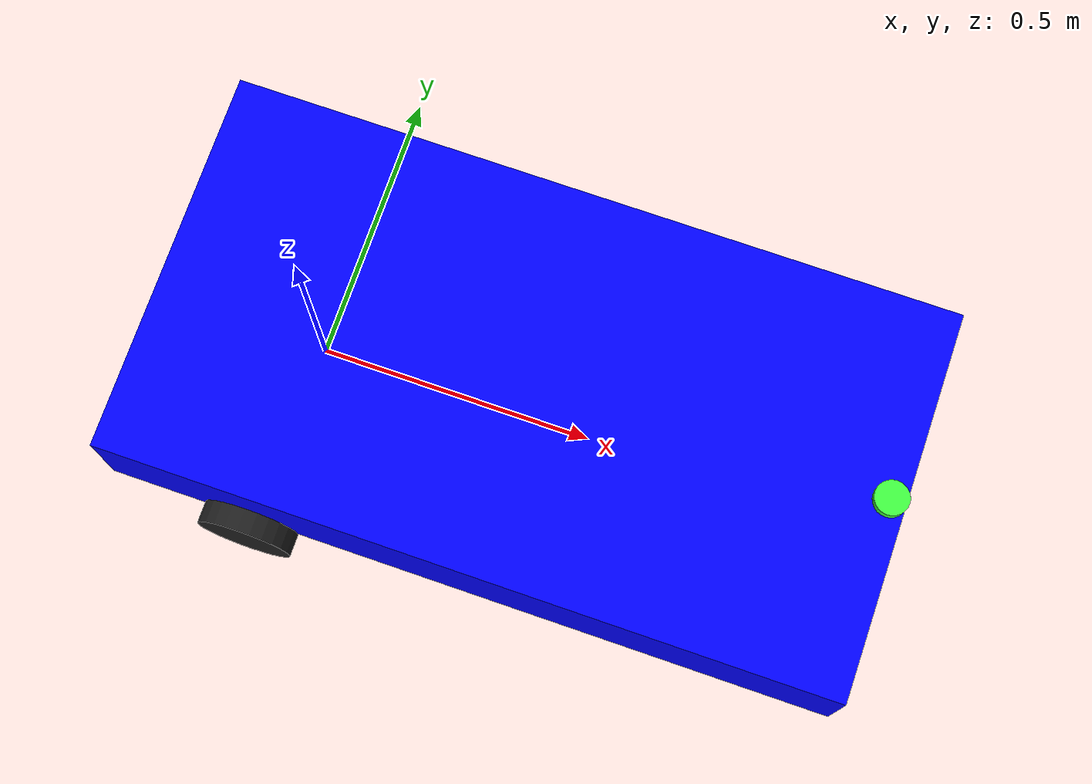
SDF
<sdf version='1.9'>
  <model name='jimbo_robot'>
    <link name='base_footprint'>
      <inertial>
        <pose>0.4125806451612903 0 0.1885483870967742 0 0 0</pose>
        <mass>3.1000000000000001</mass>
        <inertia>
          <ixx>0.01369596774193549</ixx>
          <ixy>0</ixy>
          <ixz>-0.0066266129032258314</ixz>
          <iyy>0.063696572580645205</iyy>
          <iyz>0</iyz>
          <izz>0.070008604838709743</izz>
        </inertia>
      </inertial>
      <collision name='base_footprint_fixed_joint_lump__base_link_collision'>
        <pose>0.3925 0 0.185 0 0 0</pose>
        <geometry>
          <box>
            <size>1.2 0.6 0.5</size>
          </box>
        </geometry>
      </collision>
      <collision name='base_footprint_fixed_joint_lump__robot_lidar_link_collision_1'>
        <pose>1.015 0 0.295 -1.5708 0 0</pose>
        <geometry>
          <cylinder>
            <length>0.02</length>
            <radius>0.029999999999999999</radius>
          </cylinder>
        </geometry>
      </collision>
      <visual name='base_footprint_fixed_joint_lump__base_link_visual'>
        <pose>0.3925 0 0.185 0 0 0</pose>
        <geometry>
          <box>
            <size>1.3 0.685 0.2</size>
          </box>
        </geometry>
        <material>
          <diffuse>0 0 1 1</diffuse>
          <ambient>0 0 1 1</ambient>
        </material>
      </visual>
      <visual name='base_footprint_fixed_joint_lump__robot_lidar_link_visual_1'>
        <pose>1.015 0 0.295 0 0 0</pose>
        <geometry>
          <cylinder>
            <length>0.02</length>
            <radius>0.029999999999999999</radius>
          </cylinder>
        </geometry>
        <material>
          <diffuse>0.25 1 0.25 1</diffuse>
          <ambient>0.25 1 0.25 1</ambient>
        </material>
      </visual>
    </link>
    <joint name='left_wheel_joint' type='revolute'>
      <pose relative_to='base_footprint'>0 0.3625 0.08499999999999999 0 0 0</pose>
      <parent>base_footprint</parent>
      <child>left_wheel</child>
      <axis>
        <xyz>0 1 0</xyz>
        <limit>
          <lower>-10000000000000000</lower>
          <upper>10000000000000000</upper>
        </limit>
        <dynamics>
          <spring_reference>0</spring_reference>
          <spring_stiffness>0</spring_stiffness>
        </dynamics>
      </axis>
    </joint>
    <link name='left_wheel'>
      <pose relative_to='left_wheel_joint'>0 0 0 0 0 0</pose>
      <inertial>
        <pose>0 0 0 0 0 0</pose>
        <mass>0.29999999999999999</mass>
        <inertia>
          <ixx>2.5000000000000001e-05</ixx>
          <ixy>0</ixy>
          <ixz>0</ixz>
          <iyy>2.5000000000000001e-05</iyy>
          <iyz>0</iyz>
          <izz>7.9999999999999996e-06</izz>
        </inertia>
      </inertial>
      <collision name='left_wheel_collision'>
        <pose>0 0 0 1.5708 0 0</pose>
        <geometry>
          <cylinder>
            <length>0.040000000000000001</length>
            <radius>0.085000000000000006</radius>
          </cylinder>
        </geometry>
      </collision>
      <visual name='left_wheel_visual'>
        <pose>0 0 0 1.5708 0 0</pose>
        <geometry>
          <cylinder>
            <length>0.040000000000000001</length>
            <radius>0.085000000000000006</radius>
          </cylinder>
        </geometry>
        <material>
          <diffuse>0.125 0.125 0.125 1</diffuse>
          <ambient>0.125 0.125 0.125 1</ambient>
        </material>
      </visual>
    </link>
    <joint name='right_wheel_joint' type='revolute'>
      <pose relative_to='base_footprint'>0 -0.3625 0.08499999999999999 0 0 0</pose>
      <parent>base_footprint</parent>
      <child>right_wheel</child>
      <axis>
        <xyz>0 1 0</xyz>
        <limit>
          <lower>-10000000000000000</lower>
          <upper>10000000000000000</upper>
        </limit>
        <dynamics>
          <spring_reference>0</spring_reference>
          <spring_stiffness>0</spring_stiffness>
        </dynamics>
      </axis>
    </joint>
    <link name='right_wheel'>
      <pose relative_to='right_wheel_joint'>0 0 0 0 0 0</pose>
      <inertial>
        <pose>0 0 0 0 0 0</pose>
        <mass>0.29999999999999999</mass>
        <inertia>
          <ixx>2.5000000000000001e-05</ixx>
          <ixy>0</ixy>
          <ixz>0</ixz>
          <iyy>2.5000000000000001e-05</iyy>
          <iyz>0</iyz>
          <izz>7.9999999999999996e-06</izz>
        </inertia>
      </inertial>
      <collision name='right_wheel_collision'>
        <pose>0 0 0 -1.5708 0 0</pose>
        <geometry>
          <cylinder>
            <length>0.040000000000000001</length>
            <radius>0.085000000000000006</radius>
          </cylinder>
        </geometry>
      </collision>
      <visual name='right_wheel_visual'>
        <pose>0 0 0 -1.5708 0 0</pose>
        <geometry>
          <cylinder>
            <length>0.040000000000000001</length>
            <radius>0.085000000000000006</radius>
          </cylinder>
        </geometry>
        <material>
          <diffuse>0.125 0.125 0.125 1</diffuse>
          <ambient>0.125 0.125 0.125 1</ambient>
        </material>
      </visual>
    </link>
    <frame name='lidar_joint' attached_to='base_link'>
      <pose>0.6225 0 0.11 0 -0 0</pose>
    </frame>
    <frame name='robot_lidar_link' attached_to='lidar_joint'/>
    <frame name='robot_base_joint' attached_to='base_footprint'>
      <pose>0.3925 0 0.185 0 -0 0</pose>
    </frame>
    <frame name='base_link' attached_to='robot_base_joint'/>
  </model>
</sdf>
